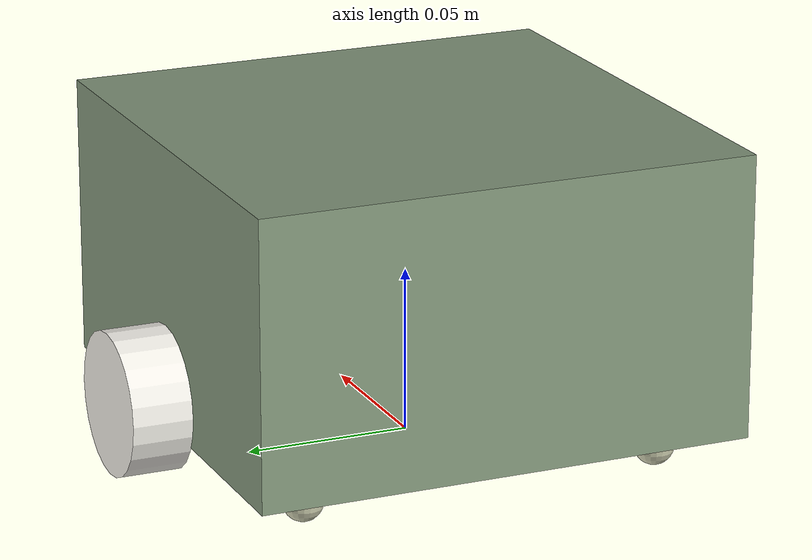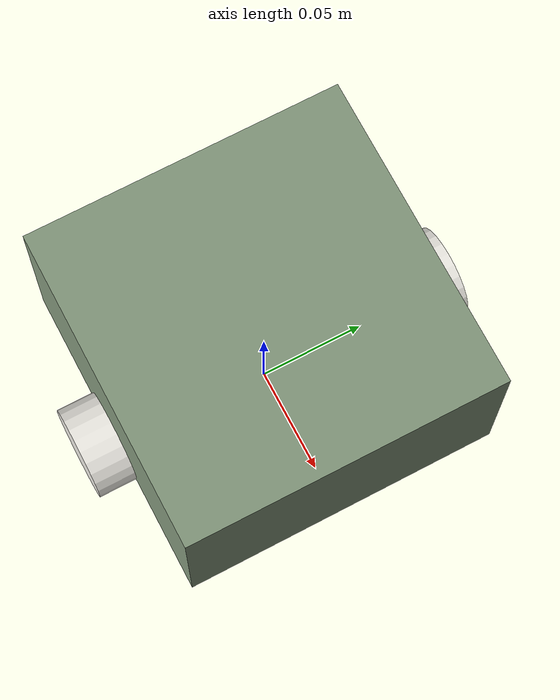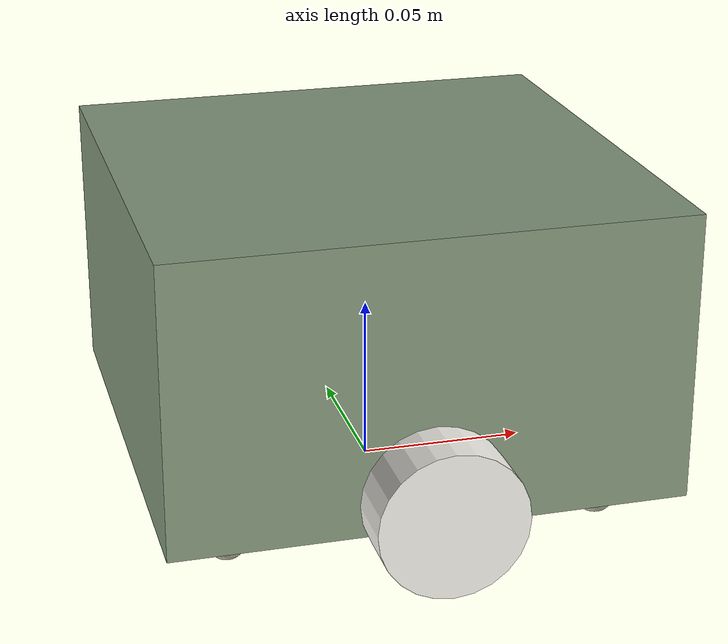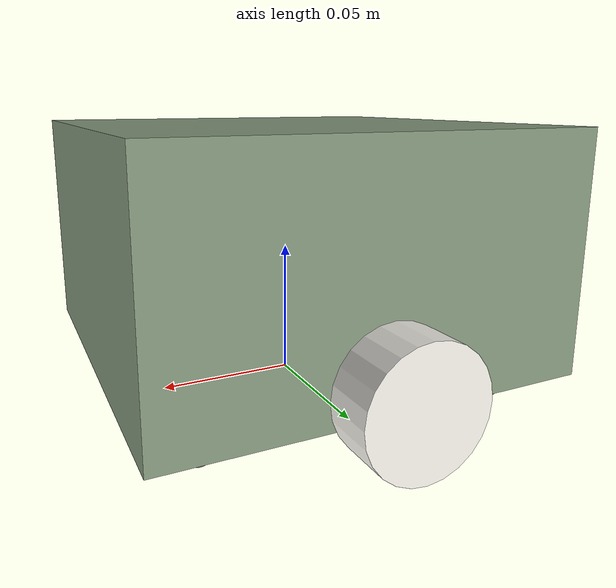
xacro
<?xml version="1.0"?>
<robot xmlns:xacro="http://www.ros.org/wiki/xacro">
    <xacro:include filename="inertial_macros.xacro"/>

    <material name="red"><color rgba="0.5 0.125 0.125 1"/></material>
    <material name="matcha"><color rgba="0.52 0.6 0.49 1"/></material>
    <material name="c3"><color rgba="0.785 0.789 0.672 1"/></material>
    <material name="c4"><color rgba="0.96 0.95 0.92 1"/></material>

    <link name="base_footprint"/>
    <link name="base_link"/>
    <joint name="base_footprint_joint" type="fixed">
        <parent link="base_footprint"/>
        <child link="base_link"/>
        <origin xyz="0 0 0.012" rpy="0 0 0"/>
    </joint>

    <link name="chasis_link">
        <visual>
            <origin xyz="0 0 0.0425"/>
            <geometry><box size="0.15 0.15 0.085"/></geometry>
            <material name="matcha"/>
        </visual>
        <collision>
            <origin xyz="0 0 0.0425"/>
            <geometry><box size="0.15 0.15 0.085"/></geometry>
        </collision>
        <xacro:inertial_box mass="0.5" x="0.15" y="0.15" z="0.085">
            <origin xyz="0 0 0.0425" rpy="0 0 0"/>
        </xacro:inertial_box>
    </link>
    <gazebo reference="chasis_link">
        <material>Gazebo/Grass</material>
    </gazebo>
    <joint name="chasis_base" type="fixed">
        <parent link="base_link"/>
        <child link="chasis_link"/>
        <origin xyz="0 0 0"/>
    </joint>

    <link name="left_wheel_link">
        <visual>
            <geometry><cylinder radius="0.0215" length="0.018"/></geometry>
            <material name="c4"/>
        </visual>
        <collision>
            <geometry><cylinder radius="0.0215" length="0.018"/></geometry>
        </collision>
        <xacro:inertial_cylinder mass="0.015" radius="0.0215" length="0.018">
            <origin xyz="0 0 0" rpy="0 0 0"/>
        </xacro:inertial_cylinder>
    </link>
    <gazebo reference="left_wheel_link">
        <material>Gazebo/Ivory</material>
    </gazebo>
    <joint name="left_wheel_base" type="continuous">
        <parent link="base_link"/>
        <child link="left_wheel_link"/>
        <origin xyz="0 0.084 0.0095" rpy="${-pi/2} 0 0"/>
        <axis xyz="0 0 1"/>
    </joint>

    <link name="right_wheel_link">
        <visual>
            <geometry><cylinder radius="0.0215" length="0.018"/></geometry>
            <material name="c4"/>
        </visual>
        <collision>
            <geometry><cylinder radius="0.0215" length="0.018"/></geometry>
        </collision>
        <xacro:inertial_cylinder mass="0.015" radius="0.0215" length="0.018">
            <origin xyz="0 0 0" rpy="0 0 0"/>
        </xacro:inertial_cylinder>
    </link>
    <gazebo reference="right_wheel_link">
        <material>Gazebo/Ivory</material>
    </gazebo>
    <joint name="right_wheel_base" type="continuous">
        <parent link="base_link"/>
        <child link="right_wheel_link"/>
        <origin xyz="0 -0.084 0.0095" rpy="${pi/2} 0 0"/>
        <axis xyz="0 0 -1"/>
    </joint>

    <link name="caster1_link">
        <visual>
            <geometry><sphere radius="0.006"/></geometry>
            <material name="c3"/>
        </visual>
        <collision>
            <geometry><sphere radius="0.006"/></geometry>
        </collision>
        <xacro:inertial_sphere mass="0.015" radius="0.006">
            <origin xyz="0 0 0" rpy="0 0 0"/>
        </xacro:inertial_sphere>
    </link>
    <gazebo reference="caster1_link">
        <material>Gazebo/Sand</material>
    </gazebo>
    <joint name="caster1_base" type="fixed">
        <parent link="base_link"/>
        <child link="caster1_link"/>
        <origin xyz="0.055 0.055 -0.006"/>
    </joint>

    <link name="caster2_link">
        <visual>
            <geometry><sphere radius="0.006"/></geometry>
            <material name="c3"/>
        </visual>
        <collision>
            <geometry><sphere radius="0.006"/></geometry>
        </collision>
        <xacro:inertial_sphere mass="0.015" radius="0.006">
            <origin xyz="0 0 0" rpy="0 0 0"/>
        </xacro:inertial_sphere>
    </link>
    <gazebo reference="caster2_link">
        <material>Gazebo/Sand</material>
    </gazebo>
    <joint name="caster2_base" type="fixed">
        <parent link="base_link"/>
        <child link="caster2_link"/>
        <origin xyz="-0.055 0.055 -0.006"/>
    </joint>

    <link name="caster3_link">
        <visual>
            <geometry><sphere radius="0.006"/></geometry>
            <material name="c3"/>
        </visual>
        <collision>
            <geometry><sphere radius="0.006"/></geometry>
        </collision>
        <xacro:inertial_sphere mass="0.015" radius="0.006">
            <origin xyz="0 0 0" rpy="0 0 0"/>
        </xacro:inertial_sphere>
    </link>
    <gazebo reference="caster3_link">
        <material>Gazebo/Sand</material>
    </gazebo>
    <joint name="caster3_base" type="fixed">
        <parent link="base_link"/>
        <child link="caster3_link"/>
        <origin xyz="0.055 -0.055 -0.006"/>
    </joint>

    <link name="caster4_link">
        <visual>
            <geometry><sphere radius="0.006"/></geometry>
            <material name="c3"/>
        </visual>
        <collision>
            <geometry><sphere radius="0.006"/></geometry>
        </collision>
        <xacro:inertial_sphere mass="0.015" radius="0.006">
            <origin xyz="0 0 0" rpy="0 0 0"/>
        </xacro:inertial_sphere>
    </link>
    <gazebo reference="caster4_link">
        <material>Gazebo/Sand</material>
    </gazebo>
    <joint name="caster4_base" type="fixed">
        <parent link="base_link"/>
        <child link="caster4_link"/>
        <origin xyz="-0.055 -0.055 -0.006"/>
    </joint>

    <gazebo>
        <plugin name="differential_drive_controller" filename="libgazebo_ros_diff_drive.so">
            <updateRate>100</updateRate>
            <leftJoint>left_wheel_base</leftJoint>
            <rightJoint>right_wheel_base</rightJoint>
            <wheelSeparation>0.168</wheelSeparation>
            <wheelDiameter>0.043</wheelDiameter>
            <wheelAcceleration>1.0</wheelAcceleration>
            <wheelTorque>20</wheelTorque>
            <commandTopic>cmd_vel</commandTopic>
            <odometryTopic>odom</odometryTopic>
            <odometryFrame>odom</odometryFrame>
            <robotBaseFrame>base_footprint</robotBaseFrame>
            <publishWheelTF>true</publishWheelTF>
            <publishOdomTF>true</publishOdomTF>
        </plugin>
    </gazebo>
</robot>
